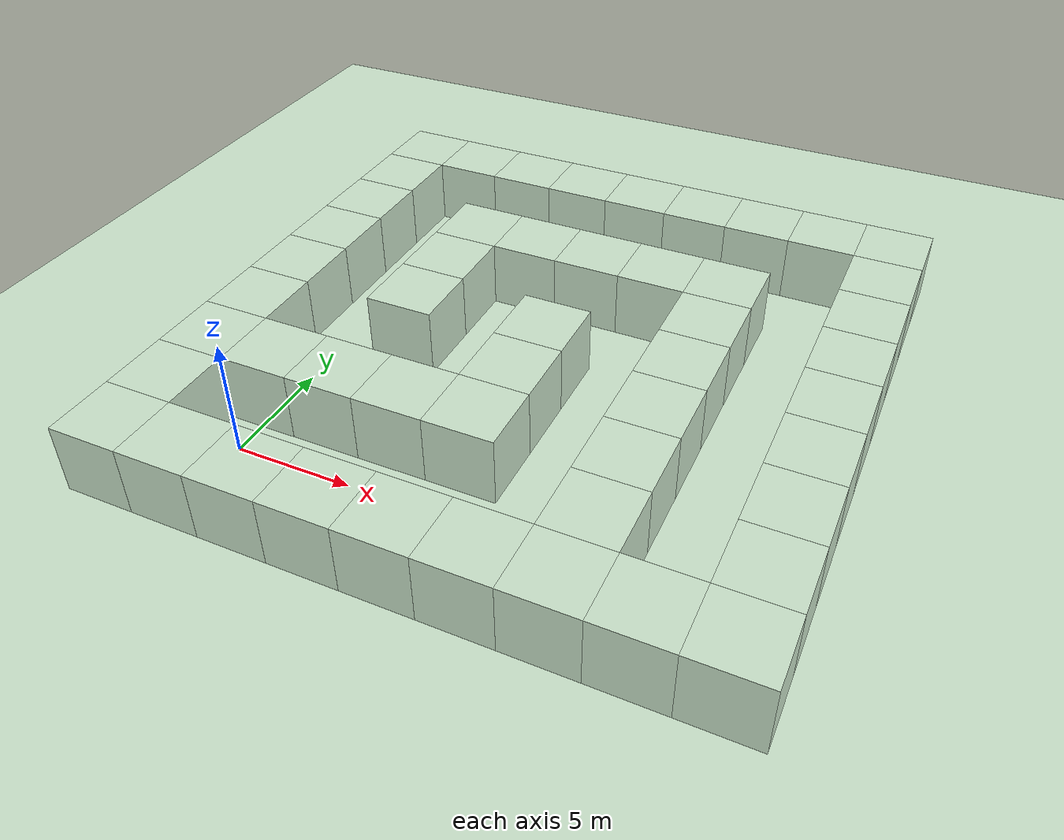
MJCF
<mujoco model="swimmer">
  <compiler angle="degree" coordinate="local" inertiafromgeom="true" />
  <default>
    <geom conaffinity="1" condim="1" contype="1" material="geom" rgba="0.8 0.6 .4 1" />
    <joint armature="0.1" />
  </default>
  <asset>
    <texture type="skybox" builtin="gradient" width="100" height="100" rgb1="1 1 1" rgb2="0 0 0" />
    <texture name="texgeom" type="cube" builtin="flat" mark="cross" width="127" height="127" rgb1="0.8 0.6 0.4" rgb2="0.8 0.6 0.4" markrgb="1 1 1" random="0.01" />
    <texture name="texplane" type="2d" builtin="checker" rgb1="0.2 0.3 0.4" rgb2="0.6 0.4 0.6" width="100" height="100" />
    <texture name="texplane2" type="cube" builtin="checker" rgb1="0.1 0.1 0.1" rgb2="1.0 1.0 1.0" width="10" height="10" />
    <material name='MatPlane' texture="texplane" shininess="1" texrepeat="60 60" specular="1"  reflectance="0.0" />
    <material name='MatChecker' texture="texplane2" shininess="1" texrepeat="100 100" specular="1"  reflectance="0.5" texuniform="true"/>
    <material name='geom' texture="texgeom" texuniform="true" />
  </asset>
  <worldbody>
    <light cutoff="100" diffuse="1 1 1" dir="-0 0 -1.3" directional="true" exponent="1" pos="0 0 1.3" specular=".1 .1 .1" />
    <geom conaffinity="1" condim="3" material="MatPlane" name="floor" pos="0 0 -0.1" rgba="0.8 0.9 0.8 1" size="40 40 0.1" type="plane" />
    <!--  ================= SWIMMER ================= /-->
    <body name="torso" pos="0 0 0">
      <camera name="track" mode="trackcom" pos="0 -3 3" xyaxes="1 0 0 0 1 1" />
      <geom name="frontbody" density="1000" fromto="1.5 0 0 0.5 0 0" size="0.1" type="capsule" />
      <joint axis="1 0 0" name="slider1" pos="0 0 0" type="slide" />
      <joint axis="0 1 0" name="slider2" pos="0 0 0" type="slide" />
      <joint axis="0 0 1" name="rot" pos="0 0 0" type="hinge" />
      <body name="mid" pos="0.5 0 0">
        <geom name="midbody" density="1000" fromto="0 0 0 -1 0 0" size="0.1" type="capsule" />
        <joint axis="0 0 1" limited="true" name="rot2" pos="0 0 0" range="-100 100" type="hinge" />
        <body name="back" pos="-1 0 0">
          <geom name="backbody" density="1000" fromto="0 0 0 -1 0 0" size="0.1" type="capsule" />
          <joint axis="0 0 1" limited="true" name="rot3" pos="0 0 0" range="-100 100" type="hinge" />
        </body>
      </body>
    </body>
    <geom conaffinity="1" contype="1" material="MatChecker" name="block_0_0" pos="-3.0 -3.0 1.5" rgba="0.8 0.9 0.8 1" size="1.5 1.5 1.5" type="box" />
    <geom conaffinity="1" contype="1" material="MatChecker" name="block_0_1" pos="0.0 -3.0 1.5" rgba="0.8 0.9 0.8 1" size="1.5 1.5 1.5" type="box" />
    <geom conaffinity="1" contype="1" material="MatChecker" name="block_0_2" pos="3.0 -3.0 1.5" rgba="0.8 0.9 0.8 1" size="1.5 1.5 1.5" type="box" />
    <geom conaffinity="1" contype="1" material="MatChecker" name="block_0_3" pos="6.0 -3.0 1.5" rgba="0.8 0.9 0.8 1" size="1.5 1.5 1.5" type="box" />
    <geom conaffinity="1" contype="1" material="MatChecker" name="block_0_4" pos="9.0 -3.0 1.5" rgba="0.8 0.9 0.8 1" size="1.5 1.5 1.5" type="box" />
    <geom conaffinity="1" contype="1" material="MatChecker" name="block_0_5" pos="12.0 -3.0 1.5" rgba="0.8 0.9 0.8 1" size="1.5 1.5 1.5" type="box" />
    <geom conaffinity="1" contype="1" material="MatChecker" name="block_0_6" pos="15.0 -3.0 1.5" rgba="0.8 0.9 0.8 1" size="1.5 1.5 1.5" type="box" />
    <geom conaffinity="1" contype="1" material="MatChecker" name="block_0_7" pos="18.0 -3.0 1.5" rgba="0.8 0.9 0.8 1" size="1.5 1.5 1.5" type="box" />
    <geom conaffinity="1" contype="1" material="MatChecker" name="block_0_8" pos="21.0 -3.0 1.5" rgba="0.8 0.9 0.8 1" size="1.5 1.5 1.5" type="box" />
    <geom conaffinity="1" contype="1" material="MatChecker" name="block_1_0" pos="-3.0 0.0 1.5" rgba="0.8 0.9 0.8 1" size="1.5 1.5 1.5" type="box" />
    <geom conaffinity="1" contype="1" material="MatChecker" name="block_1_6" pos="15.0 0.0 1.5" rgba="0.8 0.9 0.8 1" size="1.5 1.5 1.5" type="box" />
    <geom conaffinity="1" contype="1" material="MatChecker" name="block_1_8" pos="21.0 0.0 1.5" rgba="0.8 0.9 0.8 1" size="1.5 1.5 1.5" type="box" />
    <geom conaffinity="1" contype="1" material="MatChecker" name="block_2_0" pos="-3.0 3.0 1.5" rgba="0.8 0.9 0.8 1" size="1.5 1.5 1.5" type="box" />
    <geom conaffinity="1" contype="1" material="MatChecker" name="block_2_1" pos="0.0 3.0 1.5" rgba="0.8 0.9 0.8 1" size="1.5 1.5 1.5" type="box" />
    <geom conaffinity="1" contype="1" material="MatChecker" name="block_2_2" pos="3.0 3.0 1.5" rgba="0.8 0.9 0.8 1" size="1.5 1.5 1.5" type="box" />
    <geom conaffinity="1" contype="1" material="MatChecker" name="block_2_3" pos="6.0 3.0 1.5" rgba="0.8 0.9 0.8 1" size="1.5 1.5 1.5" type="box" />
    <geom conaffinity="1" contype="1" material="MatChecker" name="block_2_4" pos="9.0 3.0 1.5" rgba="0.8 0.9 0.8 1" size="1.5 1.5 1.5" type="box" />
    <geom conaffinity="1" contype="1" material="MatChecker" name="block_2_6" pos="15.0 3.0 1.5" rgba="0.8 0.9 0.8 1" size="1.5 1.5 1.5" type="box" />
    <geom conaffinity="1" contype="1" material="MatChecker" name="block_2_8" pos="21.0 3.0 1.5" rgba="0.8 0.9 0.8 1" size="1.5 1.5 1.5" type="box" />
    <geom conaffinity="1" contype="1" material="MatChecker" name="block_3_0" pos="-3.0 6.0 1.5" rgba="0.8 0.9 0.8 1" size="1.5 1.5 1.5" type="box" />
    <geom conaffinity="1" contype="1" material="MatChecker" name="block_3_4" pos="9.0 6.0 1.5" rgba="0.8 0.9 0.8 1" size="1.5 1.5 1.5" type="box" />
    <geom conaffinity="1" contype="1" material="MatChecker" name="block_3_6" pos="15.0 6.0 1.5" rgba="0.8 0.9 0.8 1" size="1.5 1.5 1.5" type="box" />
    <geom conaffinity="1" contype="1" material="MatChecker" name="block_3_8" pos="21.0 6.0 1.5" rgba="0.8 0.9 0.8 1" size="1.5 1.5 1.5" type="box" />
    <geom conaffinity="1" contype="1" material="MatChecker" name="block_4_0" pos="-3.0 9.0 1.5" rgba="0.8 0.9 0.8 1" size="1.5 1.5 1.5" type="box" />
    <geom conaffinity="1" contype="1" material="MatChecker" name="block_4_2" pos="3.0 9.0 1.5" rgba="0.8 0.9 0.8 1" size="1.5 1.5 1.5" type="box" />
    <geom conaffinity="1" contype="1" material="MatChecker" name="block_4_4" pos="9.0 9.0 1.5" rgba="0.8 0.9 0.8 1" size="1.5 1.5 1.5" type="box" />
    <geom conaffinity="1" contype="1" material="MatChecker" name="block_4_6" pos="15.0 9.0 1.5" rgba="0.8 0.9 0.8 1" size="1.5 1.5 1.5" type="box" />
    <geom conaffinity="1" contype="1" material="MatChecker" name="block_4_8" pos="21.0 9.0 1.5" rgba="0.8 0.9 0.8 1" size="1.5 1.5 1.5" type="box" />
    <geom conaffinity="1" contype="1" material="MatChecker" name="block_5_0" pos="-3.0 12.0 1.5" rgba="0.8 0.9 0.8 1" size="1.5 1.5 1.5" type="box" />
    <geom conaffinity="1" contype="1" material="MatChecker" name="block_5_2" pos="3.0 12.0 1.5" rgba="0.8 0.9 0.8 1" size="1.5 1.5 1.5" type="box" />
    <geom conaffinity="1" contype="1" material="MatChecker" name="block_5_6" pos="15.0 12.0 1.5" rgba="0.8 0.9 0.8 1" size="1.5 1.5 1.5" type="box" />
    <geom conaffinity="1" contype="1" material="MatChecker" name="block_5_8" pos="21.0 12.0 1.5" rgba="0.8 0.9 0.8 1" size="1.5 1.5 1.5" type="box" />
    <geom conaffinity="1" contype="1" material="MatChecker" name="block_6_0" pos="-3.0 15.0 1.5" rgba="0.8 0.9 0.8 1" size="1.5 1.5 1.5" type="box" />
    <geom conaffinity="1" contype="1" material="MatChecker" name="block_6_2" pos="3.0 15.0 1.5" rgba="0.8 0.9 0.8 1" size="1.5 1.5 1.5" type="box" />
    <geom conaffinity="1" contype="1" material="MatChecker" name="block_6_3" pos="6.0 15.0 1.5" rgba="0.8 0.9 0.8 1" size="1.5 1.5 1.5" type="box" />
    <geom conaffinity="1" contype="1" material="MatChecker" name="block_6_4" pos="9.0 15.0 1.5" rgba="0.8 0.9 0.8 1" size="1.5 1.5 1.5" type="box" />
    <geom conaffinity="1" contype="1" material="MatChecker" name="block_6_5" pos="12.0 15.0 1.5" rgba="0.8 0.9 0.8 1" size="1.5 1.5 1.5" type="box" />
    <geom conaffinity="1" contype="1" material="MatChecker" name="block_6_6" pos="15.0 15.0 1.5" rgba="0.8 0.9 0.8 1" size="1.5 1.5 1.5" type="box" />
    <geom conaffinity="1" contype="1" material="MatChecker" name="block_6_8" pos="21.0 15.0 1.5" rgba="0.8 0.9 0.8 1" size="1.5 1.5 1.5" type="box" />
    <geom conaffinity="1" contype="1" material="MatChecker" name="block_7_0" pos="-3.0 18.0 1.5" rgba="0.8 0.9 0.8 1" size="1.5 1.5 1.5" type="box" />
    <geom conaffinity="1" contype="1" material="MatChecker" name="block_7_8" pos="21.0 18.0 1.5" rgba="0.8 0.9 0.8 1" size="1.5 1.5 1.5" type="box" />
    <geom conaffinity="1" contype="1" material="MatChecker" name="block_8_0" pos="-3.0 21.0 1.5" rgba="0.8 0.9 0.8 1" size="1.5 1.5 1.5" type="box" />
    <geom conaffinity="1" contype="1" material="MatChecker" name="block_8_1" pos="0.0 21.0 1.5" rgba="0.8 0.9 0.8 1" size="1.5 1.5 1.5" type="box" />
    <geom conaffinity="1" contype="1" material="MatChecker" name="block_8_2" pos="3.0 21.0 1.5" rgba="0.8 0.9 0.8 1" size="1.5 1.5 1.5" type="box" />
    <geom conaffinity="1" contype="1" material="MatChecker" name="block_8_3" pos="6.0 21.0 1.5" rgba="0.8 0.9 0.8 1" size="1.5 1.5 1.5" type="box" />
    <geom conaffinity="1" contype="1" material="MatChecker" name="block_8_4" pos="9.0 21.0 1.5" rgba="0.8 0.9 0.8 1" size="1.5 1.5 1.5" type="box" />
    <geom conaffinity="1" contype="1" material="MatChecker" name="block_8_5" pos="12.0 21.0 1.5" rgba="0.8 0.9 0.8 1" size="1.5 1.5 1.5" type="box" />
    <geom conaffinity="1" contype="1" material="MatChecker" name="block_8_6" pos="15.0 21.0 1.5" rgba="0.8 0.9 0.8 1" size="1.5 1.5 1.5" type="box" />
    <geom conaffinity="1" contype="1" material="MatChecker" name="block_8_7" pos="18.0 21.0 1.5" rgba="0.8 0.9 0.8 1" size="1.5 1.5 1.5" type="box" />
    <geom conaffinity="1" contype="1" material="MatChecker" name="block_8_8" pos="21.0 21.0 1.5" rgba="0.8 0.9 0.8 1" size="1.5 1.5 1.5" type="box" />
  </worldbody>
  <actuator>
    <motor ctrllimited="true" ctrlrange="-1 1" gear="150.0" joint="rot2" />
    <motor ctrllimited="true" ctrlrange="-1 1" gear="150.0" joint="rot3" />
  </actuator>
</mujoco>
